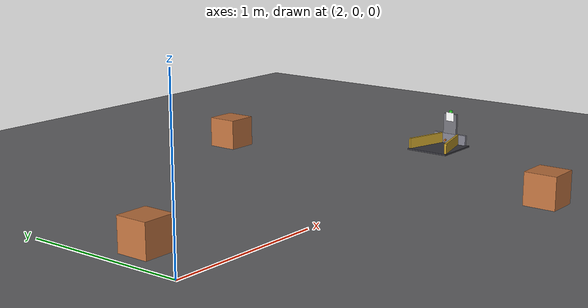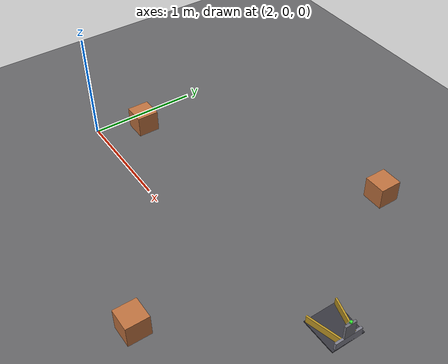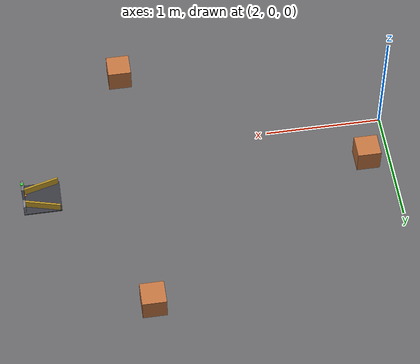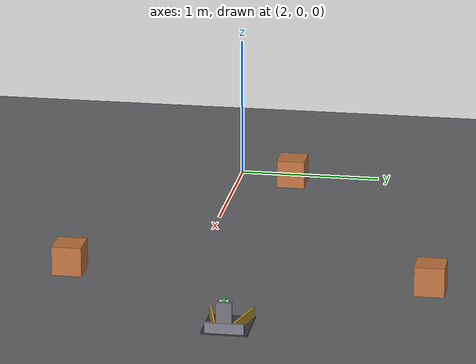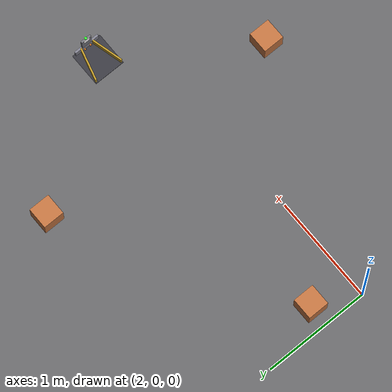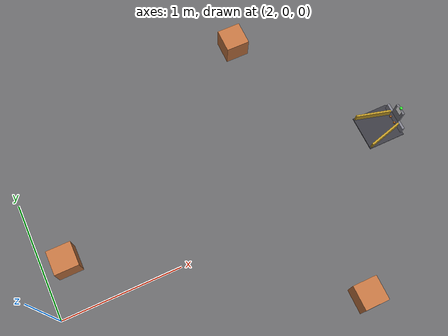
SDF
<sdf version="1.8">
 <world name="test_station">
  <physics name="dart" type="dart" default="true">
   <max_step_size>0.002</max_step_size>
   <real_time_factor>1.0</real_time_factor>
  </physics>
  <plugin filename="ignition-gazebo-physics-system" name="ignition::gazebo::systems::Physics"/>
  <plugin filename="ignition-gazebo-user-commands-system" name="ignition::gazebo::systems::UserCommands"/>
  <plugin filename="ignition-gazebo-scene-broadcaster-system" name="ignition::gazebo::systems::SceneBroadcaster"/>
  <plugin filename="ignition-gazebo-sensors-system" name="ignition::gazebo::systems::Sensors">
   <render_engine>ogre</render_engine>
  </plugin>
  <plugin filename="ignition-gazebo-imu-system" name="ignition::gazebo::systems::Imu"/>
  <light name="sun" type="directional">
   <pose>0 0 10 0 0 0</pose>
   <diffuse>1 1 1 1</diffuse>
   <specular>0.3 0.3 0.3 1</specular>
   <direction>-0.3 -0.4 -0.9</direction>
  </light>
  <scene><ambient>0.5 0.5 0.5 1</ambient><background>0.6 0.75 0.9 1</background><grid>false</grid></scene>
  <model name="ground">
   <static>true</static>
   <link name="ground_link">
    <collision name="ground_collision">
     <geometry><plane><normal>0 0 1</normal><size>40 40</size></plane></geometry>
     <surface><friction><ode><mu>1.0</mu><mu2>1.0</mu2></ode></friction></surface>
    </collision>
    <visual name="ground_visual">
     <geometry><plane><normal>0 0 1</normal><size>40 40</size></plane></geometry>
     <material>
      <ambient>0.35 0.35 0.36 1</ambient>
      <diffuse>0.40 0.40 0.41 1</diffuse>
      <specular>0.08 0.08 0.09 1</specular>
     </material>
    </visual>
   </link>
  </model>
  <model name="box_ahead">
   <static>true</static>
   <pose>2.2 0.4 0.1 0 0 0</pose>
   <link name="l">
    <collision name="c"><geometry><box><size>0.2 0.2 0.2</size></box></geometry></collision>
    <visual name="v">
     <geometry><box><size>0.2 0.2 0.2</size></box></geometry>
     <material><ambient>0.7 0.4 0.2 1</ambient><diffuse>0.75 0.45 0.25 1</diffuse></material>
    </visual>
   </link>
  </model>
  <model name="box_left">
   <static>true</static>
   <pose>4.2 1.6 0.1 0 0 0</pose>
   <link name="l">
    <collision name="c"><geometry><box><size>0.2 0.2 0.2</size></box></geometry></collision>
    <visual name="v">
     <geometry><box><size>0.2 0.2 0.2</size></box></geometry>
     <material><ambient>0.7 0.4 0.2 1</ambient><diffuse>0.75 0.45 0.25 1</diffuse></material>
    </visual>
   </link>
  </model>
  <model name="box_right">
   <static>true</static>
   <pose>4.2 -0.8 0.1 0 0 0</pose>
   <link name="l">
    <collision name="c"><geometry><box><size>0.2 0.2 0.2</size></box></geometry></collision>
    <visual name="v">
     <geometry><box><size>0.2 0.2 0.2</size></box></geometry>
     <material><ambient>0.7 0.4 0.2 1</ambient><diffuse>0.75 0.45 0.25 1</diffuse></material>
    </visual>
   </link>
  </model>
  <model name="charging_station_0">
   <static>true</static>
   <pose>5.0 0.4 0 0 0 3.141592653589793</pose>
   <link name="base">
    <visual name="pad_v">
     <pose>0 0 0.005 0 0 0</pose>
     <geometry><box><size>0.32 0.30 0.01</size></box></geometry>
     <material><ambient>0.15 0.15 0.17 1</ambient><diffuse>0.22 0.22 0.25 1</diffuse></material>
    </visual>
    <collision name="pad_c">
     <pose>0 0 0.005 0 0 0</pose>
     <geometry><box><size>0.32 0.30 0.01</size></box></geometry>
    </collision>
    <visual name="back_v">
     <pose>-0.15 0 0.04 0 0 0</pose>
     <geometry><box><size>0.02 0.25 0.08</size></box></geometry>
     <material><ambient>0.35 0.35 0.38 1</ambient><diffuse>0.5 0.5 0.55 1</diffuse></material>
    </visual>
    <collision name="back_c">
     <pose>-0.15 0 0.04 0 0 0</pose>
     <geometry><box><size>0.02 0.25 0.08</size></box></geometry>
    </collision>
    <visual name="wall_L_v">
     <pose>0 0.10 0.04 0 0 0.2606</pose>
     <geometry><box><size>0.31 0.015 0.08</size></box></geometry>
     <material><ambient>0.55 0.45 0.10 1</ambient><diffuse>0.75 0.60 0.15 1</diffuse></material>
    </visual>
    <collision name="wall_L_c">
     <pose>0 0.10 0.04 0 0 0.2606</pose>
     <geometry><box><size>0.31 0.015 0.08</size></box></geometry>
    </collision>
    <visual name="wall_R_v">
     <pose>0 -0.10 0.04 0 0 -0.2606</pose>
     <geometry><box><size>0.31 0.015 0.08</size></box></geometry>
     <material><ambient>0.55 0.45 0.10 1</ambient><diffuse>0.75 0.60 0.15 1</diffuse></material>
    </visual>
    <collision name="wall_R_c">
     <pose>0 -0.10 0.04 0 0 -0.2606</pose>
     <geometry><box><size>0.31 0.015 0.08</size></box></geometry>
    </collision>
    <visual name="pin_L_v">
     <pose>-0.135 0.03 0.03 0 1.5708 0</pose>
     <geometry><cylinder><radius>0.008</radius><length>0.02</length></cylinder></geometry>
     <material><ambient>0.55 0.30 0.10 1</ambient><diffuse>0.80 0.45 0.15 1</diffuse></material>
    </visual>
    <collision name="pin_L_c">
     <pose>-0.135 0.03 0.03 0 1.5708 0</pose>
     <geometry><cylinder><radius>0.008</radius><length>0.02</length></cylinder></geometry>
    </collision>
    <visual name="pin_R_v">
     <pose>-0.135 -0.03 0.03 0 1.5708 0</pose>
     <geometry><cylinder><radius>0.008</radius><length>0.02</length></cylinder></geometry>
     <material><ambient>0.55 0.30 0.10 1</ambient><diffuse>0.80 0.45 0.15 1</diffuse></material>
    </visual>
    <collision name="pin_R_c">
     <pose>-0.135 -0.03 0.03 0 1.5708 0</pose>
     <geometry><cylinder><radius>0.008</radius><length>0.02</length></cylinder></geometry>
    </collision>
    <visual name="mast_v">
     <pose>-0.15 0 0.15 0 0 0</pose>
     <geometry><box><size>0.02 0.10 0.14</size></box></geometry>
     <material><ambient>0.30 0.30 0.32 1</ambient><diffuse>0.45 0.45 0.48 1</diffuse></material>
    </visual>
    <collision name="mast_c">
     <pose>-0.15 0 0.15 0 0 0</pose>
     <geometry><box><size>0.02 0.10 0.14</size></box></geometry>
    </collision>
    <visual name="tag_v">
     <pose>-0.139 0 0.20 0 0 0</pose>
     <geometry><box><size>0.002 0.06 0.06</size></box></geometry>
     <material>
      <ambient>0.95 0.95 0.95 1</ambient>
      <diffuse>1 1 1 1</diffuse>
      <emissive>0.4 0.4 0.4 1</emissive>
     </material>
    </visual>
    <visual name="led_v">
     <pose>-0.15 0 0.235 0 0 0</pose>
     <geometry><cylinder><radius>0.012</radius><length>0.015</length></cylinder></geometry>
     <material>
      <ambient>0.1 0.6 0.1 1</ambient>
      <diffuse>0.2 0.9 0.2 1</diffuse>
      <emissive>0.1 0.5 0.1 1</emissive>
     </material>
    </visual>
   </link>
  </model>
 </world>
</sdf>
